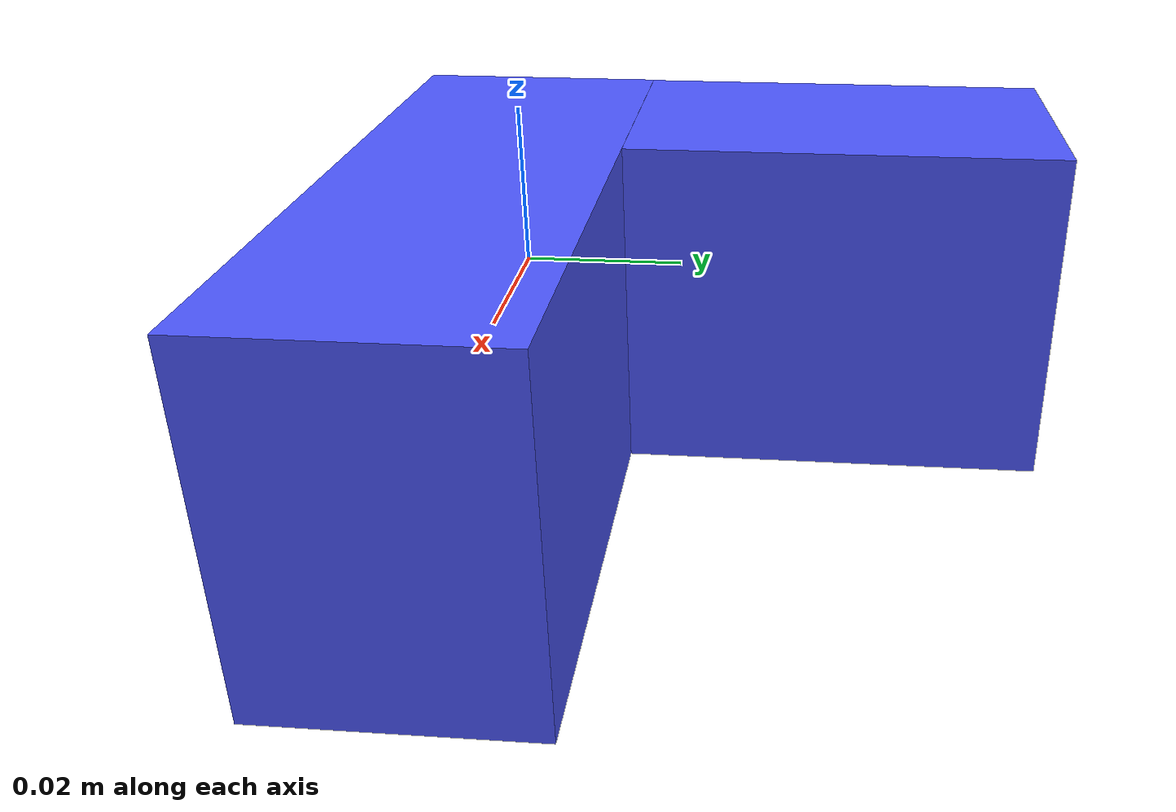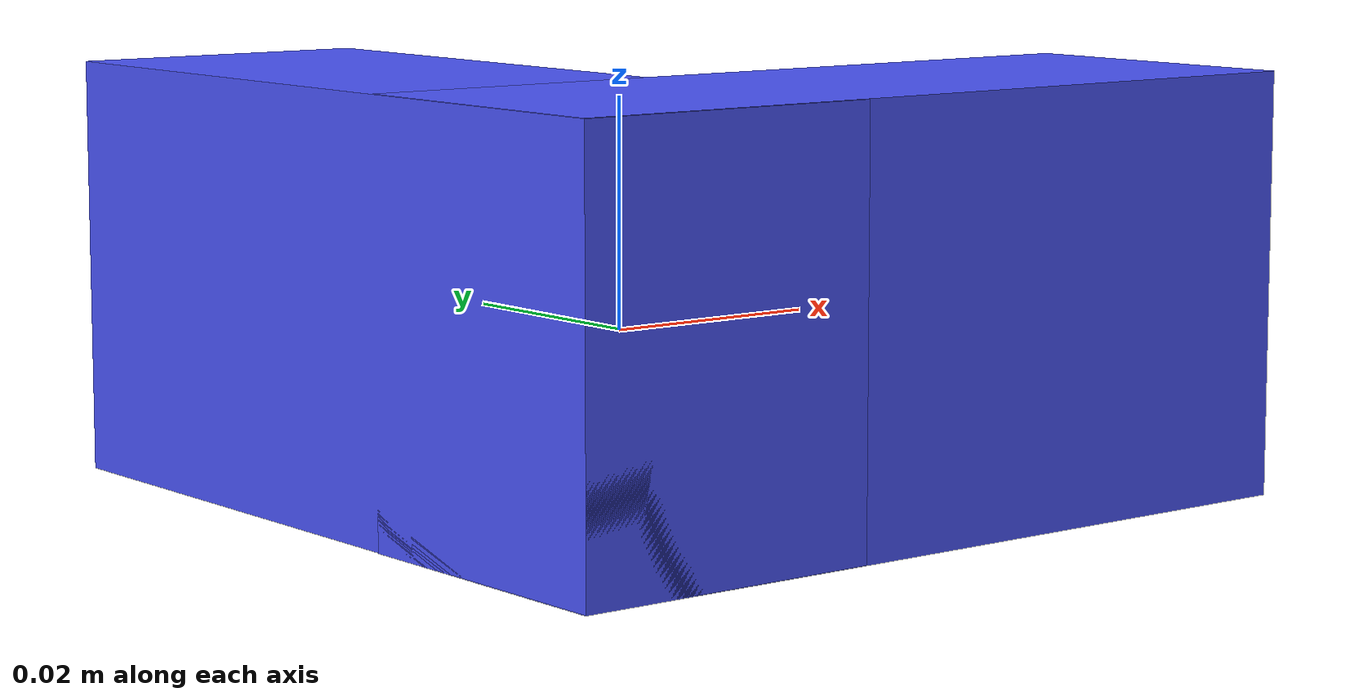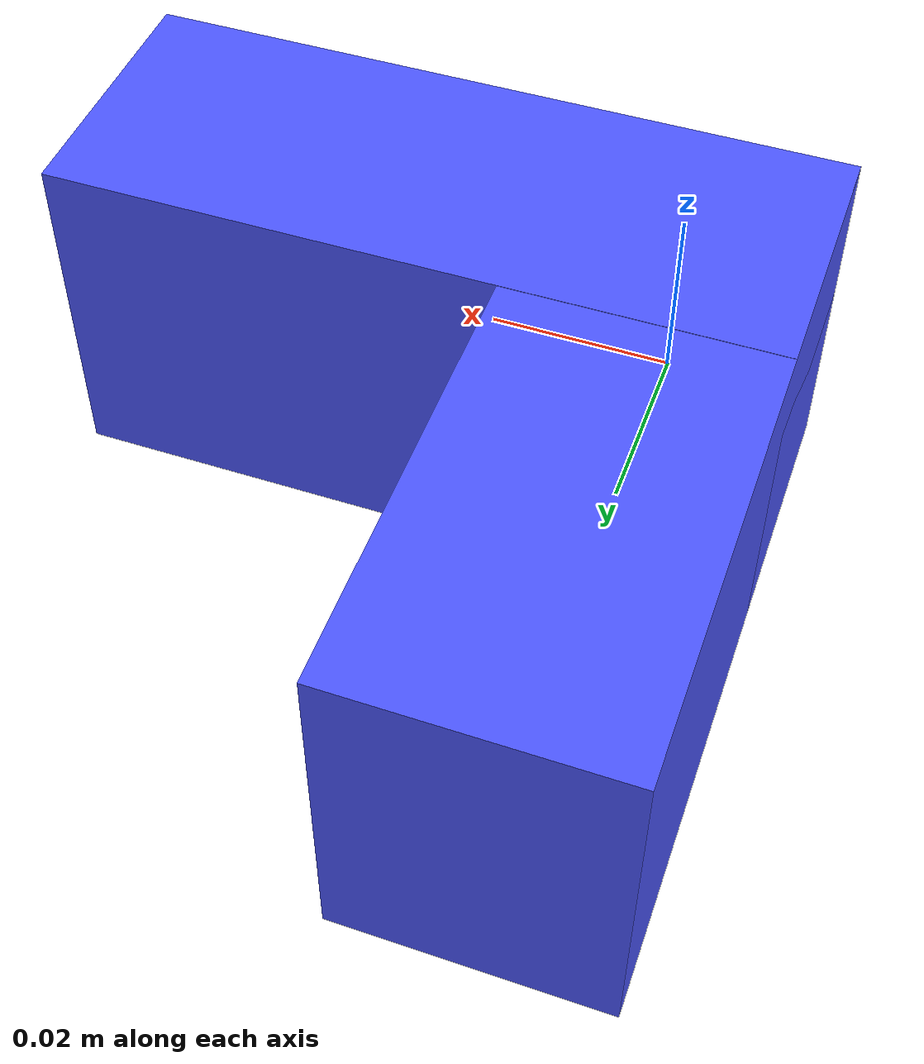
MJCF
<mujoco model="ell.urdf">
    <compiler angle="radian" autolimits="true" />
    <option impratio="10" />
    <custom>
        <text name="semantic_class" data="block" />
    </custom>
    <default>
        <default class="visual">
            <geom contype="0" conaffinity="0" group="2" />
        </default>
        <default class="collision">
            <geom group="3" />
        </default>
    </default>

    <worldbody>
    <body name="L-shaped block">
        <geom size="0.04 0.015 0.02" pos="0.025 0 0" type="box" rgba="0.3 0.3412 1 1" />
        <geom size="0.015 0.04 0.01995" pos="0 0.025 0" type="box" rgba="0.3 0.3412 1 1" />
    </body>
    </worldbody>
</mujoco>
